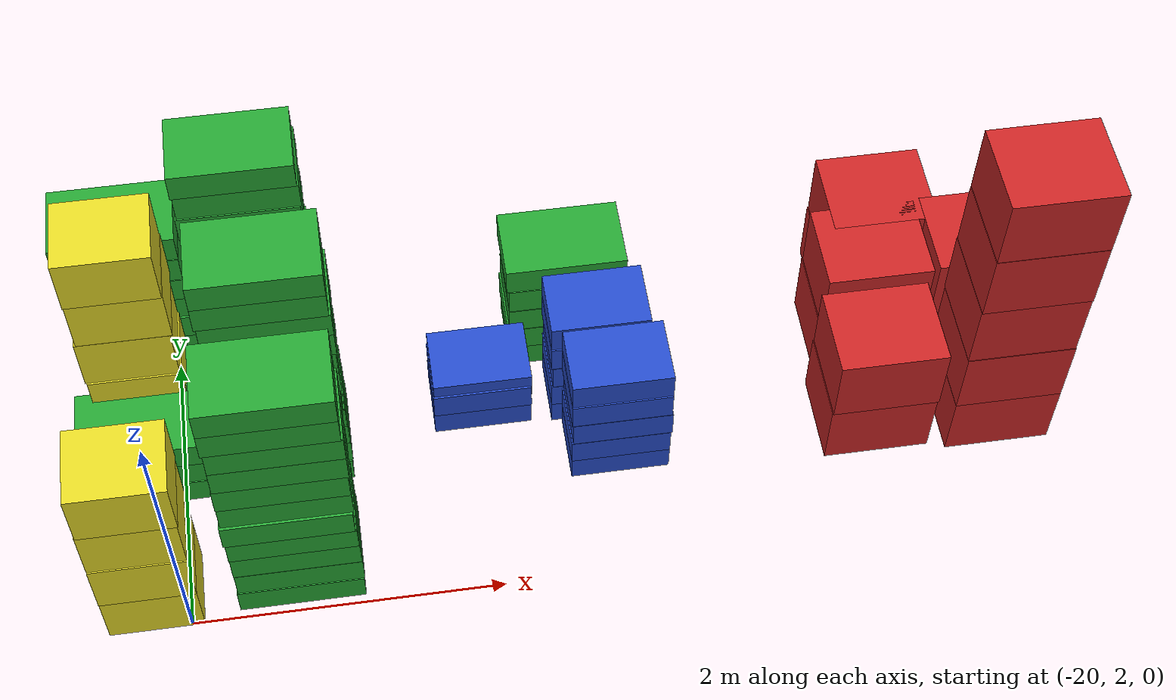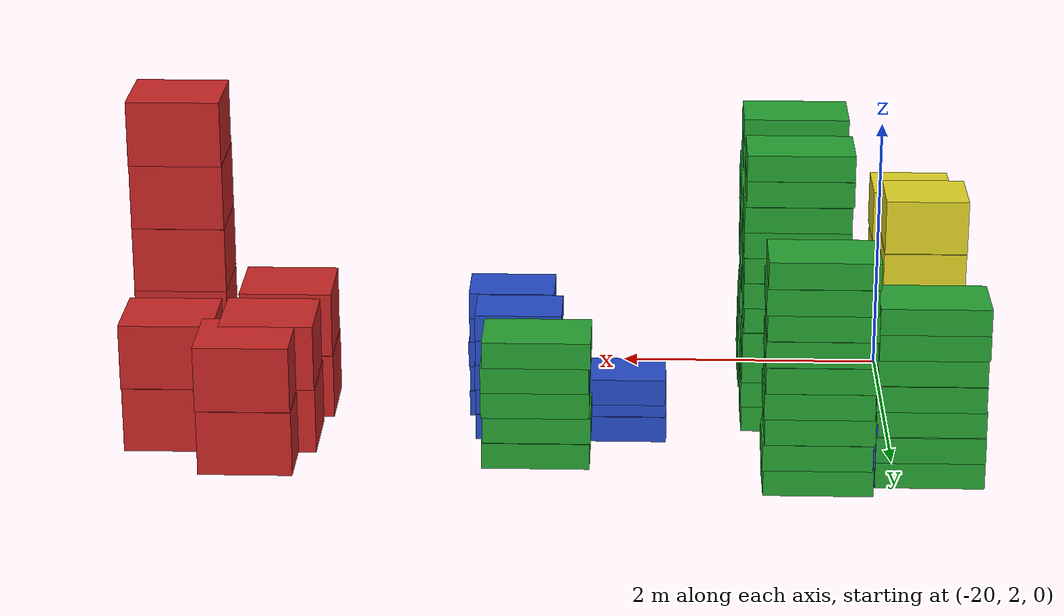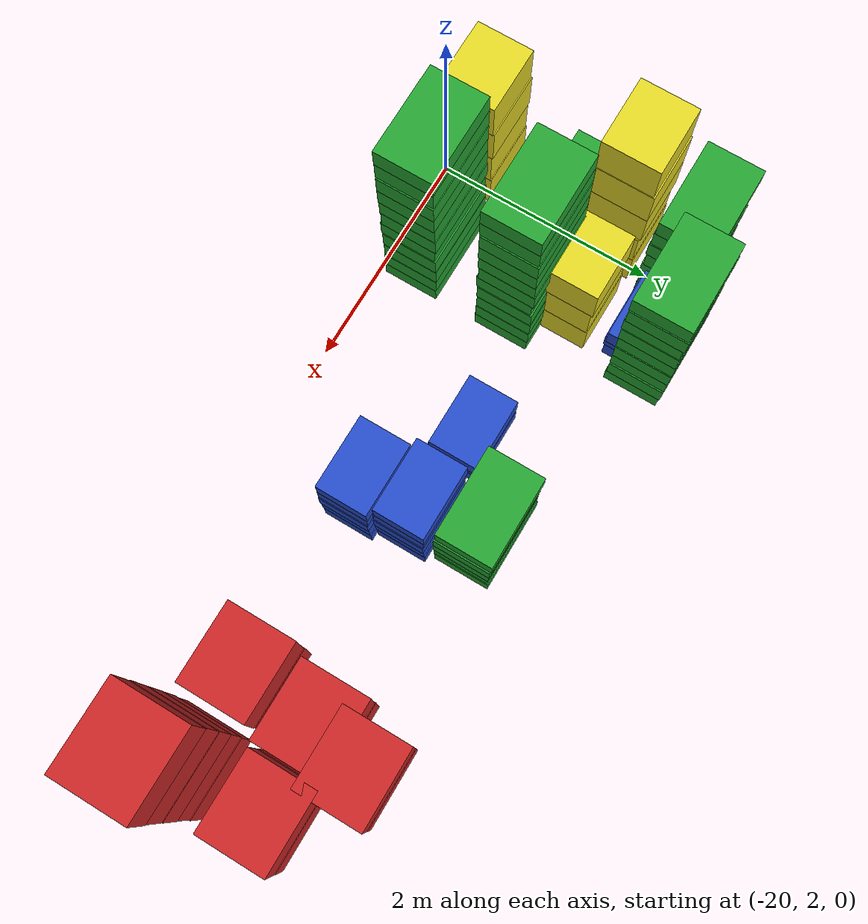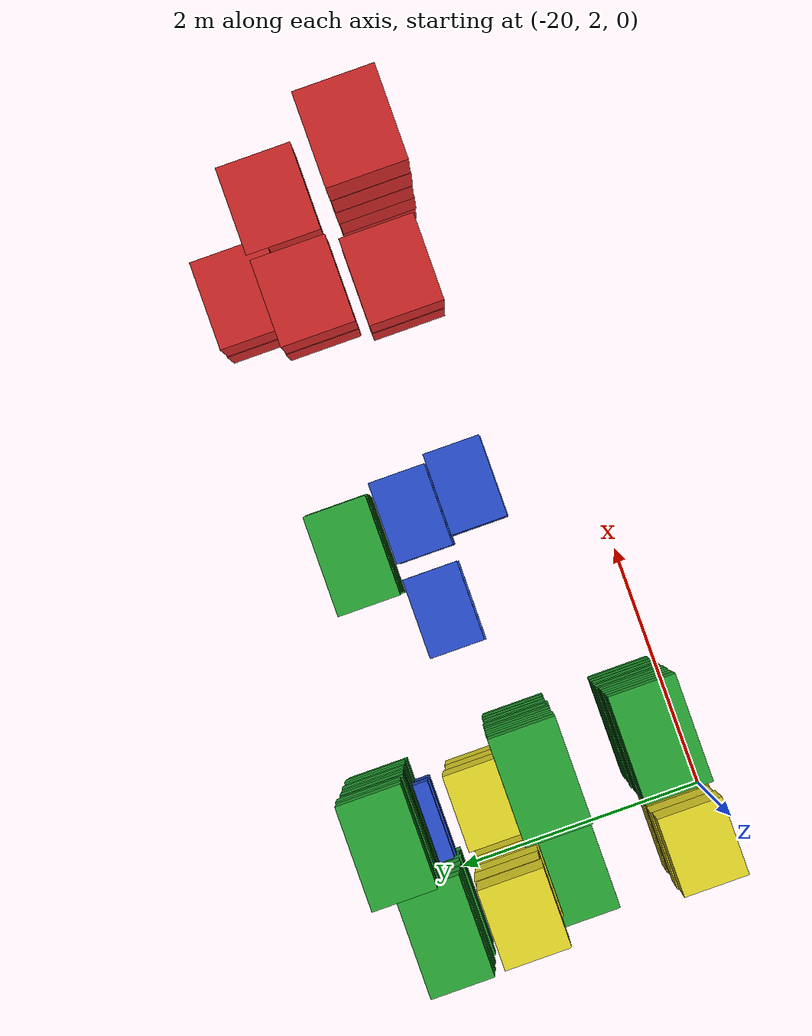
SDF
<sdf version="1.6">
 <world name="default">
  <include><uri>model://sun</uri></include>
  <model name="baggage_C_x4_0">
   <model name="baggage_C_0">
    <static>1</static>
    <link name="link">
     <collision name="collision"><geometry><box><size>0.6 0.5 0.4</size></box></geometry></collision>
     <visual name="visual">
      <geometry><box><size>0.6 0.5 0.4</size></box></geometry>
      <material>
       <script><uri>file://media/materials/scripts/gazebo.material</uri><name>Gazebo/Yellow</name></script>
      </material>
     </visual>
    </link>
    <pose>0 0 0.2 0 -0 0</pose>
   </model>
   <model name="baggage_C_1">
    <static>1</static>
    <link name="link">
     <collision name="collision"><geometry><box><size>0.6 0.5 0.4</size></box></geometry></collision>
     <visual name="visual">
      <geometry><box><size>0.6 0.5 0.4</size></box></geometry>
      <material>
       <script><uri>file://media/materials/scripts/gazebo.material</uri><name>Gazebo/Yellow</name></script>
      </material>
     </visual>
    </link>
    <pose>0.0008 -0.0083 0.6 0 -0 0</pose>
   </model>
   <model name="baggage_C_2">
    <static>1</static>
    <link name="link">
     <collision name="collision"><geometry><box><size>0.6 0.5 0.4</size></box></geometry></collision>
     <visual name="visual">
      <geometry><box><size>0.6 0.5 0.4</size></box></geometry>
      <material>
       <script><uri>file://media/materials/scripts/gazebo.material</uri><name>Gazebo/Yellow</name></script>
      </material>
     </visual>
    </link>
    <pose>0.0001 0.0014 1 0 -0 0</pose>
   </model>
   <model name="baggage_C_3">
    <static>1</static>
    <link name="link">
     <collision name="collision"><geometry><box><size>0.6 0.5 0.4</size></box></geometry></collision>
     <visual name="visual">
      <geometry><box><size>0.6 0.5 0.4</size></box></geometry>
      <material>
       <script><uri>file://media/materials/scripts/gazebo.material</uri><name>Gazebo/Yellow</name></script>
      </material>
     </visual>
    </link>
    <pose>0.007 -0.0089 1.4 0 -0 0</pose>
   </model>
   <pose>-20.2232 2.23903 0 0 -0 0</pose>
  </model>
  <model name="baggage_D_x11">
   <model name="baggage_D_0">
    <static>1</static>
    <link name="link">
     <collision name="collision"><geometry><box><size>0.8 0.5 0.2</size></box></geometry></collision>
     <visual name="visual">
      <geometry><box><size>0.8 0.5 0.2</size></box></geometry>
      <material>
       <script><uri>file://media/materials/scripts/gazebo.material</uri><name>Gazebo/Green</name></script>
      </material>
     </visual>
    </link>
    <pose>0 0 0.1 0 -0 0</pose>
   </model>
   <model name="baggage_D_1">
    <static>1</static>
    <link name="link">
     <collision name="collision"><geometry><box><size>0.8 0.5 0.2</size></box></geometry></collision>
     <visual name="visual">
      <geometry><box><size>0.8 0.5 0.2</size></box></geometry>
      <material>
       <script><uri>file://media/materials/scripts/gazebo.material</uri><name>Gazebo/Green</name></script>
      </material>
     </visual>
    </link>
    <pose>0.0069 0.0078 0.3 0 -0 0</pose>
   </model>
   <model name="baggage_D_2">
    <static>1</static>
    <link name="link">
     <collision name="collision"><geometry><box><size>0.8 0.5 0.2</size></box></geometry></collision>
     <visual name="visual">
      <geometry><box><size>0.8 0.5 0.2</size></box></geometry>
      <material>
       <script><uri>file://media/materials/scripts/gazebo.material</uri><name>Gazebo/Green</name></script>
      </material>
     </visual>
    </link>
    <pose>0.0035 0.01 0.5 0 -0 0</pose>
   </model>
   <model name="baggage_D_3">
    <static>1</static>
    <link name="link">
     <collision name="collision"><geometry><box><size>0.8 0.5 0.2</size></box></geometry></collision>
     <visual name="visual">
      <geometry><box><size>0.8 0.5 0.2</size></box></geometry>
      <material>
       <script><uri>file://media/materials/scripts/gazebo.material</uri><name>Gazebo/Green</name></script>
      </material>
     </visual>
    </link>
    <pose>0.0009 0.0056 0.7 0 -0 0</pose>
   </model>
   <model name="baggage_D_4">
    <static>1</static>
    <link name="link">
     <collision name="collision"><geometry><box><size>0.8 0.5 0.2</size></box></geometry></collision>
     <visual name="visual">
      <geometry><box><size>0.8 0.5 0.2</size></box></geometry>
      <material>
       <script><uri>file://media/materials/scripts/gazebo.material</uri><name>Gazebo/Green</name></script>
      </material>
     </visual>
    </link>
    <pose>-0.0074 -0.0079 0.9 0 -0 0</pose>
   </model>
   <model name="baggage_D_5">
    <static>1</static>
    <link name="link">
     <collision name="collision"><geometry><box><size>0.8 0.5 0.2</size></box></geometry></collision>
     <visual name="visual">
      <geometry><box><size>0.8 0.5 0.2</size></box></geometry>
      <material>
       <script><uri>file://media/materials/scripts/gazebo.material</uri><name>Gazebo/Green</name></script>
      </material>
     </visual>
    </link>
    <pose>0.0011 0.0099 1.1 0 -0 0</pose>
   </model>
   <model name="baggage_D_6">
    <static>1</static>
    <link name="link">
     <collision name="collision"><geometry><box><size>0.8 0.5 0.2</size></box></geometry></collision>
     <visual name="visual">
      <geometry><box><size>0.8 0.5 0.2</size></box></geometry>
      <material>
       <script><uri>file://media/materials/scripts/gazebo.material</uri><name>Gazebo/Green</name></script>
      </material>
     </visual>
    </link>
    <pose>-0.0009 0.0022 1.3 0 -0 0</pose>
   </model>
   <model name="baggage_D_7">
    <static>1</static>
    <link name="link">
     <collision name="collision"><geometry><box><size>0.8 0.5 0.2</size></box></geometry></collision>
     <visual name="visual">
      <geometry><box><size>0.8 0.5 0.2</size></box></geometry>
      <material>
       <script><uri>file://media/materials/scripts/gazebo.material</uri><name>Gazebo/Green</name></script>
      </material>
     </visual>
    </link>
    <pose>0.0046 0.0014 1.5 0 -0 0</pose>
   </model>
   <model name="baggage_D_8">
    <static>1</static>
    <link name="link">
     <collision name="collision"><geometry><box><size>0.8 0.5 0.2</size></box></geometry></collision>
     <visual name="visual">
      <geometry><box><size>0.8 0.5 0.2</size></box></geometry>
      <material>
       <script><uri>file://media/materials/scripts/gazebo.material</uri><name>Gazebo/Green</name></script>
      </material>
     </visual>
    </link>
    <pose>0.0052 0.0021 1.7 0 -0 0</pose>
   </model>
   <model name="baggage_D_9">
    <static>1</static>
    <link name="link">
     <collision name="collision"><geometry><box><size>0.8 0.5 0.2</size></box></geometry></collision>
     <visual name="visual">
      <geometry><box><size>0.8 0.5 0.2</size></box></geometry>
      <material>
       <script><uri>file://media/materials/scripts/gazebo.material</uri><name>Gazebo/Green</name></script>
      </material>
     </visual>
    </link>
    <pose>-0.0068 -0.0054 1.9 0 -0 0</pose>
   </model>
   <model name="baggage_D_10">
    <static>1</static>
    <link name="link">
     <collision name="collision"><geometry><box><size>0.8 0.5 0.2</size></box></geometry></collision>
     <visual name="visual">
      <geometry><box><size>0.8 0.5 0.2</size></box></geometry>
      <material>
       <script><uri>file://media/materials/scripts/gazebo.material</uri><name>Gazebo/Green</name></script>
      </material>
     </visual>
    </link>
    <pose>-0.0064 -0.0067 2.1 0 -0 0</pose>
   </model>
   <pose>-19.2962 2.30348 0 0 -0 0</pose>
  </model>
  <model name="baggage_D_x3_2">
   <model name="baggage_D_0">
    <static>1</static>
    <link name="link">
     <collision name="collision"><geometry><box><size>0.8 0.5 0.2</size></box></geometry></collision>
     <visual name="visual">
      <geometry><box><size>0.8 0.5 0.2</size></box></geometry>
      <material>
       <script><uri>file://media/materials/scripts/gazebo.material</uri><name>Gazebo/Green</name></script>
      </material>
     </visual>
    </link>
    <pose>0 0 0.1 0 -0 0</pose>
   </model>
   <model name="baggage_D_1">
    <static>1</static>
    <link name="link">
     <collision name="collision"><geometry><box><size>0.8 0.5 0.2</size></box></geometry></collision>
     <visual name="visual">
      <geometry><box><size>0.8 0.5 0.2</size></box></geometry>
      <material>
       <script><uri>file://media/materials/scripts/gazebo.material</uri><name>Gazebo/Green</name></script>
      </material>
     </visual>
    </link>
    <pose>-0.0056 0.0083 0.3 0 -0 0</pose>
   </model>
   <model name="baggage_D_2">
    <static>1</static>
    <link name="link">
     <collision name="collision"><geometry><box><size>0.8 0.5 0.2</size></box></geometry></collision>
     <visual name="visual">
      <geometry><box><size>0.8 0.5 0.2</size></box></geometry>
      <material>
       <script><uri>file://media/materials/scripts/gazebo.material</uri><name>Gazebo/Green</name></script>
      </material>
     </visual>
    </link>
    <pose>0.0053 0.0057 0.5 0 -0 0</pose>
   </model>
   <pose>-20.2273 3.1731 0 0 -0 0</pose>
  </model>
  <model name="baggage_D_x11_0">
   <model name="baggage_D_0">
    <static>1</static>
    <link name="link">
     <collision name="collision"><geometry><box><size>0.8 0.5 0.2</size></box></geometry></collision>
     <visual name="visual">
      <geometry><box><size>0.8 0.5 0.2</size></box></geometry>
      <material>
       <script><uri>file://media/materials/scripts/gazebo.material</uri><name>Gazebo/Green</name></script>
      </material>
     </visual>
    </link>
    <pose>0 0 0.1 0 -0 0</pose>
   </model>
   <model name="baggage_D_1">
    <static>1</static>
    <link name="link">
     <collision name="collision"><geometry><box><size>0.8 0.5 0.2</size></box></geometry></collision>
     <visual name="visual">
      <geometry><box><size>0.8 0.5 0.2</size></box></geometry>
      <material>
       <script><uri>file://media/materials/scripts/gazebo.material</uri><name>Gazebo/Green</name></script>
      </material>
     </visual>
    </link>
    <pose>0.0069 0.0078 0.3 0 -0 0</pose>
   </model>
   <model name="baggage_D_2">
    <static>1</static>
    <link name="link">
     <collision name="collision"><geometry><box><size>0.8 0.5 0.2</size></box></geometry></collision>
     <visual name="visual">
      <geometry><box><size>0.8 0.5 0.2</size></box></geometry>
      <material>
       <script><uri>file://media/materials/scripts/gazebo.material</uri><name>Gazebo/Green</name></script>
      </material>
     </visual>
    </link>
    <pose>0.0035 0.01 0.5 0 -0 0</pose>
   </model>
   <model name="baggage_D_3">
    <static>1</static>
    <link name="link">
     <collision name="collision"><geometry><box><size>0.8 0.5 0.2</size></box></geometry></collision>
     <visual name="visual">
      <geometry><box><size>0.8 0.5 0.2</size></box></geometry>
      <material>
       <script><uri>file://media/materials/scripts/gazebo.material</uri><name>Gazebo/Green</name></script>
      </material>
     </visual>
    </link>
    <pose>0.0009 0.0056 0.7 0 -0 0</pose>
   </model>
   <model name="baggage_D_4">
    <static>1</static>
    <link name="link">
     <collision name="collision"><geometry><box><size>0.8 0.5 0.2</size></box></geometry></collision>
     <visual name="visual">
      <geometry><box><size>0.8 0.5 0.2</size></box></geometry>
      <material>
       <script><uri>file://media/materials/scripts/gazebo.material</uri><name>Gazebo/Green</name></script>
      </material>
     </visual>
    </link>
    <pose>-0.0074 -0.0079 0.9 0 -0 0</pose>
   </model>
   <model name="baggage_D_5">
    <static>1</static>
    <link name="link">
     <collision name="collision"><geometry><box><size>0.8 0.5 0.2</size></box></geometry></collision>
     <visual name="visual">
      <geometry><box><size>0.8 0.5 0.2</size></box></geometry>
      <material>
       <script><uri>file://media/materials/scripts/gazebo.material</uri><name>Gazebo/Green</name></script>
      </material>
     </visual>
    </link>
    <pose>0.0011 0.0099 1.1 0 -0 0</pose>
   </model>
   <model name="baggage_D_6">
    <static>1</static>
    <link name="link">
     <collision name="collision"><geometry><box><size>0.8 0.5 0.2</size></box></geometry></collision>
     <visual name="visual">
      <geometry><box><size>0.8 0.5 0.2</size></box></geometry>
      <material>
       <script><uri>file://media/materials/scripts/gazebo.material</uri><name>Gazebo/Green</name></script>
      </material>
     </visual>
    </link>
    <pose>-0.0009 0.0022 1.3 0 -0 0</pose>
   </model>
   <model name="baggage_D_7">
    <static>1</static>
    <link name="link">
     <collision name="collision"><geometry><box><size>0.8 0.5 0.2</size></box></geometry></collision>
     <visual name="visual">
      <geometry><box><size>0.8 0.5 0.2</size></box></geometry>
      <material>
       <script><uri>file://media/materials/scripts/gazebo.material</uri><name>Gazebo/Green</name></script>
      </material>
     </visual>
    </link>
    <pose>0.0046 0.0014 1.5 0 -0 0</pose>
   </model>
   <model name="baggage_D_8">
    <static>1</static>
    <link name="link">
     <collision name="collision"><geometry><box><size>0.8 0.5 0.2</size></box></geometry></collision>
     <visual name="visual">
      <geometry><box><size>0.8 0.5 0.2</size></box></geometry>
      <material>
       <script><uri>file://media/materials/scripts/gazebo.material</uri><name>Gazebo/Green</name></script>
      </material>
     </visual>
    </link>
    <pose>0.0052 0.0021 1.7 0 -0 0</pose>
   </model>
   <model name="baggage_D_9">
    <static>1</static>
    <link name="link">
     <collision name="collision"><geometry><box><size>0.8 0.5 0.2</size></box></geometry></collision>
     <visual name="visual">
      <geometry><box><size>0.8 0.5 0.2</size></box></geometry>
      <material>
       <script><uri>file://media/materials/scripts/gazebo.material</uri><name>Gazebo/Green</name></script>
      </material>
     </visual>
    </link>
    <pose>-0.0068 -0.0054 1.9 0 -0 0</pose>
   </model>
   <model name="baggage_D_10">
    <static>1</static>
    <link name="link">
     <collision name="collision"><geometry><box><size>0.8 0.5 0.2</size></box></geometry></collision>
     <visual name="visual">
      <geometry><box><size>0.8 0.5 0.2</size></box></geometry>
      <material>
       <script><uri>file://media/materials/scripts/gazebo.material</uri><name>Gazebo/Green</name></script>
      </material>
     </visual>
    </link>
    <pose>-0.0064 -0.0067 2.1 0 -0 0</pose>
   </model>
   <pose>-19.2952 3.1927 0 0 -0 0</pose>
  </model>
  <model name="baggage_C_x5">
   <model name="baggage_C_0">
    <static>1</static>
    <link name="link">
     <collision name="collision"><geometry><box><size>0.6 0.5 0.4</size></box></geometry></collision>
     <visual name="visual">
      <geometry><box><size>0.6 0.5 0.4</size></box></geometry>
      <material>
       <script><uri>file://media/materials/scripts/gazebo.material</uri><name>Gazebo/Yellow</name></script>
      </material>
     </visual>
    </link>
    <pose>0 0 0.2 0 -0 0</pose>
   </model>
   <model name="baggage_C_1">
    <static>1</static>
    <link name="link">
     <collision name="collision"><geometry><box><size>0.6 0.5 0.4</size></box></geometry></collision>
     <visual name="visual">
      <geometry><box><size>0.6 0.5 0.4</size></box></geometry>
      <material>
       <script><uri>file://media/materials/scripts/gazebo.material</uri><name>Gazebo/Yellow</name></script>
      </material>
     </visual>
    </link>
    <pose>0.0004 -0.0065 0.6 0 -0 0</pose>
   </model>
   <model name="baggage_C_2">
    <static>1</static>
    <link name="link">
     <collision name="collision"><geometry><box><size>0.6 0.5 0.4</size></box></geometry></collision>
     <visual name="visual">
      <geometry><box><size>0.6 0.5 0.4</size></box></geometry>
      <material>
       <script><uri>file://media/materials/scripts/gazebo.material</uri><name>Gazebo/Yellow</name></script>
      </material>
     </visual>
    </link>
    <pose>-0.0097 0.0061 1 0 -0 0</pose>
   </model>
   <model name="baggage_C_3">
    <static>1</static>
    <link name="link">
     <collision name="collision"><geometry><box><size>0.6 0.5 0.4</size></box></geometry></collision>
     <visual name="visual">
      <geometry><box><size>0.6 0.5 0.4</size></box></geometry>
      <material>
       <script><uri>file://media/materials/scripts/gazebo.material</uri><name>Gazebo/Yellow</name></script>
      </material>
     </visual>
    </link>
    <pose>0.0039 0.0077 1.4 0 -0 0</pose>
   </model>
   <model name="baggage_C_4">
    <static>1</static>
    <link name="link">
     <collision name="collision"><geometry><box><size>0.6 0.5 0.4</size></box></geometry></collision>
     <visual name="visual">
      <geometry><box><size>0.6 0.5 0.4</size></box></geometry>
      <material>
       <script><uri>file://media/materials/scripts/gazebo.material</uri><name>Gazebo/Yellow</name></script>
      </material>
     </visual>
    </link>
    <pose>-0.0001 -0.0044 1.8 0 -0 0</pose>
   </model>
   <pose>-20.2035 3.62128 0 0 -0 0</pose>
  </model>
  <model name="baggage_C_x3_3">
   <model name="baggage_C_0">
    <static>1</static>
    <link name="link">
     <collision name="collision"><geometry><box><size>0.6 0.5 0.4</size></box></geometry></collision>
     <visual name="visual">
      <geometry><box><size>0.6 0.5 0.4</size></box></geometry>
      <material>
       <script><uri>file://media/materials/scripts/gazebo.material</uri><name>Gazebo/Yellow</name></script>
      </material>
     </visual>
    </link>
    <pose>0 0 0.2 0 -0 0</pose>
   </model>
   <model name="baggage_C_1">
    <static>1</static>
    <link name="link">
     <collision name="collision"><geometry><box><size>0.6 0.5 0.4</size></box></geometry></collision>
     <visual name="visual">
      <geometry><box><size>0.6 0.5 0.4</size></box></geometry>
      <material>
       <script><uri>file://media/materials/scripts/gazebo.material</uri><name>Gazebo/Yellow</name></script>
      </material>
     </visual>
    </link>
    <pose>0.0062 -0.0069 0.6 0 -0 0</pose>
   </model>
   <model name="baggage_C_2">
    <static>1</static>
    <link name="link">
     <collision name="collision"><geometry><box><size>0.6 0.5 0.4</size></box></geometry></collision>
     <visual name="visual">
      <geometry><box><size>0.6 0.5 0.4</size></box></geometry>
      <material>
       <script><uri>file://media/materials/scripts/gazebo.material</uri><name>Gazebo/Yellow</name></script>
      </material>
     </visual>
    </link>
    <pose>0.0089 0.0083 1 0 -0 0</pose>
   </model>
   <pose>-19.4527 3.60719 0 0 -0 0</pose>
  </model>
  <model name="baggage_B_x5_6">
   <model name="baggage_B_0">
    <static>1</static>
    <link name="link">
     <collision name="collision"><geometry><box><size>0.65 0.45 0.2</size></box></geometry></collision>
     <visual name="visual">
      <geometry><box><size>0.65 0.45 0.2</size></box></geometry>
      <material>
       <script><uri>file://media/materials/scripts/gazebo.material</uri><name>Gazebo/Blue</name></script>
      </material>
     </visual>
    </link>
    <pose>0 0 0.1 0 -0 0</pose>
   </model>
   <model name="baggage_B_1">
    <static>1</static>
    <link name="link">
     <collision name="collision"><geometry><box><size>0.65 0.45 0.2</size></box></geometry></collision>
     <visual name="visual">
      <geometry><box><size>0.65 0.45 0.2</size></box></geometry>
      <material>
       <script><uri>file://media/materials/scripts/gazebo.material</uri><name>Gazebo/Blue</name></script>
      </material>
     </visual>
    </link>
    <pose>-0.0014 -0.0091 0.3 0 -0 0</pose>
   </model>
   <model name="baggage_B_2">
    <static>1</static>
    <link name="link">
     <collision name="collision"><geometry><box><size>0.65 0.45 0.2</size></box></geometry></collision>
     <visual name="visual">
      <geometry><box><size>0.65 0.45 0.2</size></box></geometry>
      <material>
       <script><uri>file://media/materials/scripts/gazebo.material</uri><name>Gazebo/Blue</name></script>
      </material>
     </visual>
    </link>
    <pose>0.0076 -0.0066 0.5 0 -0 0</pose>
   </model>
   <model name="baggage_B_3">
    <static>1</static>
    <link name="link">
     <collision name="collision"><geometry><box><size>0.65 0.45 0.2</size></box></geometry></collision>
     <visual name="visual">
      <geometry><box><size>0.65 0.45 0.2</size></box></geometry>
      <material>
       <script><uri>file://media/materials/scripts/gazebo.material</uri><name>Gazebo/Blue</name></script>
      </material>
     </visual>
    </link>
    <pose>0 -0.0032 0.7 0 -0 0</pose>
   </model>
   <model name="baggage_B_4">
    <static>1</static>
    <link name="link">
     <collision name="collision"><geometry><box><size>0.65 0.45 0.2</size></box></geometry></collision>
     <visual name="visual">
      <geometry><box><size>0.65 0.45 0.2</size></box></geometry>
      <material>
       <script><uri>file://media/materials/scripts/gazebo.material</uri><name>Gazebo/Blue</name></script>
      </material>
     </visual>
    </link>
    <pose>0.0023 0.0073 0.9 0 -0 0</pose>
   </model>
   <pose>-20.2671 4.22693 0 0 -0 0</pose>
  </model>
  <model name="baggage_B_x3_3">
   <model name="baggage_B_0">
    <static>1</static>
    <link name="link">
     <collision name="collision"><geometry><box><size>0.65 0.45 0.2</size></box></geometry></collision>
     <visual name="visual">
      <geometry><box><size>0.65 0.45 0.2</size></box></geometry>
      <material>
       <script><uri>file://media/materials/scripts/gazebo.material</uri><name>Gazebo/Blue</name></script>
      </material>
     </visual>
    </link>
    <pose>0 0 0.1 0 -0 0</pose>
   </model>
   <model name="baggage_B_1">
    <static>1</static>
    <link name="link">
     <collision name="collision"><geometry><box><size>0.65 0.45 0.2</size></box></geometry></collision>
     <visual name="visual">
      <geometry><box><size>0.65 0.45 0.2</size></box></geometry>
      <material>
       <script><uri>file://media/materials/scripts/gazebo.material</uri><name>Gazebo/Blue</name></script>
      </material>
     </visual>
    </link>
    <pose>0.0028 -0.0086 0.3 0 -0 0</pose>
   </model>
   <model name="baggage_B_2">
    <static>1</static>
    <link name="link">
     <collision name="collision"><geometry><box><size>0.65 0.45 0.2</size></box></geometry></collision>
     <visual name="visual">
      <geometry><box><size>0.65 0.45 0.2</size></box></geometry>
      <material>
       <script><uri>file://media/materials/scripts/gazebo.material</uri><name>Gazebo/Blue</name></script>
      </material>
     </visual>
    </link>
    <pose>0.0092 0.006 0.4 0 -0 0</pose>
   </model>
   <pose>-19.537 4.23713 0 0 -0 0</pose>
  </model>
  <model name="baggage_A_x5_0">
   <model name="baggage_A_0">
    <static>1</static>
    <link name="link">
     <collision name="collision"><geometry><box><size>0.7 0.6 0.5</size></box></geometry></collision>
     <visual name="visual">
      <geometry><box><size>0.7 0.6 0.5</size></box></geometry>
      <material>
       <script><uri>file://media/materials/scripts/gazebo.material</uri><name>Gazebo/Red</name></script>
      </material>
     </visual>
    </link>
    <pose>0 0 0.25 0 -0 0</pose>
   </model>
   <model name="baggage_A_1">
    <static>1</static>
    <link name="link">
     <collision name="collision"><geometry><box><size>0.7 0.6 0.5</size></box></geometry></collision>
     <visual name="visual">
      <geometry><box><size>0.7 0.6 0.5</size></box></geometry>
      <material>
       <script><uri>file://media/materials/scripts/gazebo.material</uri><name>Gazebo/Red</name></script>
      </material>
     </visual>
    </link>
    <pose>-0.0046 -0.0065 0.75 0 -0 0</pose>
   </model>
   <model name="baggage_A_2">
    <static>1</static>
    <link name="link">
     <collision name="collision"><geometry><box><size>0.7 0.6 0.5</size></box></geometry></collision>
     <visual name="visual">
      <geometry><box><size>0.7 0.6 0.5</size></box></geometry>
      <material>
       <script><uri>file://media/materials/scripts/gazebo.material</uri><name>Gazebo/Red</name></script>
      </material>
     </visual>
    </link>
    <pose>-0.0064 -0.0011 1.25 0 -0 0</pose>
   </model>
   <model name="baggage_A_3">
    <static>1</static>
    <link name="link">
     <collision name="collision"><geometry><box><size>0.7 0.6 0.5</size></box></geometry></collision>
     <visual name="visual">
      <geometry><box><size>0.7 0.6 0.5</size></box></geometry>
      <material>
       <script><uri>file://media/materials/scripts/gazebo.material</uri><name>Gazebo/Red</name></script>
      </material>
     </visual>
    </link>
    <pose>-0.0044 -0.0061 1.75 0 -0 0</pose>
   </model>
   <model name="baggage_A_4">
    <static>1</static>
    <link name="link">
     <collision name="collision"><geometry><box><size>0.7 0.6 0.5</size></box></geometry></collision>
     <visual name="visual">
      <geometry><box><size>0.7 0.6 0.5</size></box></geometry>
      <material>
       <script><uri>file://media/materials/scripts/gazebo.material</uri><name>Gazebo/Red</name></script>
      </material>
     </visual>
    </link>
    <pose>-0.0013 -0.0026 2.25 0 -0 0</pose>
   </model>
   <pose>-14.6127 2.91654 0 0 -0 0</pose>
  </model>
  <model name="baggage_A_x2_2">
   <model name="baggage_A_0">
    <static>1</static>
    <link name="link">
     <collision name="collision"><geometry><box><size>0.7 0.6 0.5</size></box></geometry></collision>
     <visual name="visual">
      <geometry><box><size>0.7 0.6 0.5</size></box></geometry>
      <material>
       <script><uri>file://media/materials/scripts/gazebo.material</uri><name>Gazebo/Red</name></script>
      </material>
     </visual>
    </link>
    <pose>0 0 0.25 0 -0 0</pose>
   </model>
   <model name="baggage_A_1">
    <static>1</static>
    <link name="link">
     <collision name="collision"><geometry><box><size>0.7 0.6 0.5</size></box></geometry></collision>
     <visual name="visual">
      <geometry><box><size>0.7 0.6 0.5</size></box></geometry>
      <material>
       <script><uri>file://media/materials/scripts/gazebo.material</uri><name>Gazebo/Red</name></script>
      </material>
     </visual>
    </link>
    <pose>0.0063 -0.0062 0.75 0 -0 0</pose>
   </model>
   <pose>-15.4256 2.96278 0 0 -0 0</pose>
  </model>
  <model name="baggage_A_x2_3">
   <model name="baggage_A_0">
    <static>1</static>
    <link name="link">
     <collision name="collision"><geometry><box><size>0.7 0.6 0.5</size></box></geometry></collision>
     <visual name="visual">
      <geometry><box><size>0.7 0.6 0.5</size></box></geometry>
      <material>
       <script><uri>file://media/materials/scripts/gazebo.material</uri><name>Gazebo/Red</name></script>
      </material>
     </visual>
    </link>
    <pose>0 0 0.25 0 -0 0</pose>
   </model>
   <model name="baggage_A_1">
    <static>1</static>
    <link name="link">
     <collision name="collision"><geometry><box><size>0.7 0.6 0.5</size></box></geometry></collision>
     <visual name="visual">
      <geometry><box><size>0.7 0.6 0.5</size></box></geometry>
      <material>
       <script><uri>file://media/materials/scripts/gazebo.material</uri><name>Gazebo/Red</name></script>
      </material>
     </visual>
    </link>
    <pose>0.0063 -0.0062 0.75 0 -0 0</pose>
   </model>
   <pose>-14.6118 3.66384 0 0 -0 0</pose>
  </model>
  <model name="baggage_A_x2_4">
   <model name="baggage_A_0">
    <static>1</static>
    <link name="link">
     <collision name="collision"><geometry><box><size>0.7 0.6 0.5</size></box></geometry></collision>
     <visual name="visual">
      <geometry><box><size>0.7 0.6 0.5</size></box></geometry>
      <material>
       <script><uri>file://media/materials/scripts/gazebo.material</uri><name>Gazebo/Red</name></script>
      </material>
     </visual>
    </link>
    <pose>0 0 0.25 0 -0 0</pose>
   </model>
   <model name="baggage_A_1">
    <static>1</static>
    <link name="link">
     <collision name="collision"><geometry><box><size>0.7 0.6 0.5</size></box></geometry></collision>
     <visual name="visual">
      <geometry><box><size>0.7 0.6 0.5</size></box></geometry>
      <material>
       <script><uri>file://media/materials/scripts/gazebo.material</uri><name>Gazebo/Red</name></script>
      </material>
     </visual>
    </link>
    <pose>0.0063 -0.0062 0.75 0 -0 0</pose>
   </model>
   <pose>-15.3543 3.64845 0 0 -0 0</pose>
  </model>
  <model name="baggage_D_x7_0">
   <model name="baggage_D_0">
    <static>1</static>
    <link name="link">
     <collision name="collision"><geometry><box><size>0.8 0.5 0.2</size></box></geometry></collision>
     <visual name="visual">
      <geometry><box><size>0.8 0.5 0.2</size></box></geometry>
      <material>
       <script><uri>file://media/materials/scripts/gazebo.material</uri><name>Gazebo/Green</name></script>
      </material>
     </visual>
    </link>
    <pose>0 0 0.1 0 -0 0</pose>
   </model>
   <model name="baggage_D_1">
    <static>1</static>
    <link name="link">
     <collision name="collision"><geometry><box><size>0.8 0.5 0.2</size></box></geometry></collision>
     <visual name="visual">
      <geometry><box><size>0.8 0.5 0.2</size></box></geometry>
      <material>
       <script><uri>file://media/materials/scripts/gazebo.material</uri><name>Gazebo/Green</name></script>
      </material>
     </visual>
    </link>
    <pose>0.0009 0.0063 0.3 0 -0 0</pose>
   </model>
   <model name="baggage_D_2">
    <static>1</static>
    <link name="link">
     <collision name="collision"><geometry><box><size>0.8 0.5 0.2</size></box></geometry></collision>
     <visual name="visual">
      <geometry><box><size>0.8 0.5 0.2</size></box></geometry>
      <material>
       <script><uri>file://media/materials/scripts/gazebo.material</uri><name>Gazebo/Green</name></script>
      </material>
     </visual>
    </link>
    <pose>0.0011 -0.0098 0.5 0 -0 0</pose>
   </model>
   <model name="baggage_D_3">
    <static>1</static>
    <link name="link">
     <collision name="collision"><geometry><box><size>0.8 0.5 0.2</size></box></geometry></collision>
     <visual name="visual">
      <geometry><box><size>0.8 0.5 0.2</size></box></geometry>
      <material>
       <script><uri>file://media/materials/scripts/gazebo.material</uri><name>Gazebo/Green</name></script>
      </material>
     </visual>
    </link>
    <pose>0.0089 0.0055 0.7 0 -0 0</pose>
   </model>
   <model name="baggage_D_4">
    <static>1</static>
    <link name="link">
     <collision name="collision"><geometry><box><size>0.8 0.5 0.2</size></box></geometry></collision>
     <visual name="visual">
      <geometry><box><size>0.8 0.5 0.2</size></box></geometry>
      <material>
       <script><uri>file://media/materials/scripts/gazebo.material</uri><name>Gazebo/Green</name></script>
      </material>
     </visual>
    </link>
    <pose>0.009 -0.0056 0.9 0 -0 0</pose>
   </model>
   <model name="baggage_D_5">
    <static>1</static>
    <link name="link">
     <collision name="collision"><geometry><box><size>0.8 0.5 0.2</size></box></geometry></collision>
     <visual name="visual">
      <geometry><box><size>0.8 0.5 0.2</size></box></geometry>
      <material>
       <script><uri>file://media/materials/scripts/gazebo.material</uri><name>Gazebo/Green</name></script>
      </material>
     </visual>
    </link>
    <pose>0.0001 0.0013 1.1 0 -0 0</pose>
   </model>
   <model name="baggage_D_6">
    <static>1</static>
    <link name="link">
     <collision name="collision"><geometry><box><size>0.8 0.5 0.2</size></box></geometry></collision>
     <visual name="visual">
      <geometry><box><size>0.8 0.5 0.2</size></box></geometry>
      <material>
       <script><uri>file://media/materials/scripts/gazebo.material</uri><name>Gazebo/Green</name></script>
      </material>
     </visual>
    </link>
    <pose>0.0019 0.009 1.3 0 -0 0</pose>
   </model>
   <pose>-20.2436 4.22297 0 0 -0 0</pose>
  </model>
  <model name="baggage_D_x9_0">
   <model name="baggage_D_0">
    <static>1</static>
    <link name="link">
     <collision name="collision"><geometry><box><size>0.8 0.5 0.2</size></box></geometry></collision>
     <visual name="visual">
      <geometry><box><size>0.8 0.5 0.2</size></box></geometry>
      <material>
       <script><uri>file://media/materials/scripts/gazebo.material</uri><name>Gazebo/Green</name></script>
      </material>
     </visual>
    </link>
    <pose>0 0 0.1 0 -0 0</pose>
   </model>
   <model name="baggage_D_1">
    <static>1</static>
    <link name="link">
     <collision name="collision"><geometry><box><size>0.8 0.5 0.2</size></box></geometry></collision>
     <visual name="visual">
      <geometry><box><size>0.8 0.5 0.2</size></box></geometry>
      <material>
       <script><uri>file://media/materials/scripts/gazebo.material</uri><name>Gazebo/Green</name></script>
      </material>
     </visual>
    </link>
    <pose>0.0092 0.0098 0.3 0 -0 0</pose>
   </model>
   <model name="baggage_D_2">
    <static>1</static>
    <link name="link">
     <collision name="collision"><geometry><box><size>0.8 0.5 0.2</size></box></geometry></collision>
     <visual name="visual">
      <geometry><box><size>0.8 0.5 0.2</size></box></geometry>
      <material>
       <script><uri>file://media/materials/scripts/gazebo.material</uri><name>Gazebo/Green</name></script>
      </material>
     </visual>
    </link>
    <pose>-0.0038 0.0073 0.5 0 -0 0</pose>
   </model>
   <model name="baggage_D_3">
    <static>1</static>
    <link name="link">
     <collision name="collision"><geometry><box><size>0.8 0.5 0.2</size></box></geometry></collision>
     <visual name="visual">
      <geometry><box><size>0.8 0.5 0.2</size></box></geometry>
      <material>
       <script><uri>file://media/materials/scripts/gazebo.material</uri><name>Gazebo/Green</name></script>
      </material>
     </visual>
    </link>
    <pose>0.0044 0.0085 0.7 0 -0 0</pose>
   </model>
   <model name="baggage_D_4">
    <static>1</static>
    <link name="link">
     <collision name="collision"><geometry><box><size>0.8 0.5 0.2</size></box></geometry></collision>
     <visual name="visual">
      <geometry><box><size>0.8 0.5 0.2</size></box></geometry>
      <material>
       <script><uri>file://media/materials/scripts/gazebo.material</uri><name>Gazebo/Green</name></script>
      </material>
     </visual>
    </link>
    <pose>-0.0044 0.0075 0.9 0 -0 0</pose>
   </model>
   <model name="baggage_D_5">
    <static>1</static>
    <link name="link">
     <collision name="collision"><geometry><box><size>0.8 0.5 0.2</size></box></geometry></collision>
     <visual name="visual">
      <geometry><box><size>0.8 0.5 0.2</size></box></geometry>
      <material>
       <script><uri>file://media/materials/scripts/gazebo.material</uri><name>Gazebo/Green</name></script>
      </material>
     </visual>
    </link>
    <pose>0.0002 0.0017 1.1 0 -0 0</pose>
   </model>
   <model name="baggage_D_6">
    <static>1</static>
    <link name="link">
     <collision name="collision"><geometry><box><size>0.8 0.5 0.2</size></box></geometry></collision>
     <visual name="visual">
      <geometry><box><size>0.8 0.5 0.2</size></box></geometry>
      <material>
       <script><uri>file://media/materials/scripts/gazebo.material</uri><name>Gazebo/Green</name></script>
      </material>
     </visual>
    </link>
    <pose>-0.0057 -0.0032 1.3 0 -0 0</pose>
   </model>
   <model name="baggage_D_7">
    <static>1</static>
    <link name="link">
     <collision name="collision"><geometry><box><size>0.8 0.5 0.2</size></box></geometry></collision>
     <visual name="visual">
      <geometry><box><size>0.8 0.5 0.2</size></box></geometry>
      <material>
       <script><uri>file://media/materials/scripts/gazebo.material</uri><name>Gazebo/Green</name></script>
      </material>
     </visual>
    </link>
    <pose>0.0039 0.0078 1.5 0 -0 0</pose>
   </model>
   <model name="baggage_D_8">
    <static>1</static>
    <link name="link">
     <collision name="collision"><geometry><box><size>0.8 0.5 0.2</size></box></geometry></collision>
     <visual name="visual">
      <geometry><box><size>0.8 0.5 0.2</size></box></geometry>
      <material>
       <script><uri>file://media/materials/scripts/gazebo.material</uri><name>Gazebo/Green</name></script>
      </material>
     </visual>
    </link>
    <pose>-0.006 0.0028 1.7 0 -0 0</pose>
   </model>
   <pose>-19.4232 4.38361 0 0 -0 0</pose>
  </model>
  <model name="baggage_A_x2_11">
   <model name="baggage_A_0">
    <static>1</static>
    <link name="link">
     <collision name="collision"><geometry><box><size>0.7 0.6 0.5</size></box></geometry></collision>
     <visual name="visual">
      <geometry><box><size>0.7 0.6 0.5</size></box></geometry>
      <material>
       <script><uri>file://media/materials/scripts/gazebo.material</uri><name>Gazebo/Red</name></script>
      </material>
     </visual>
    </link>
    <pose>0 0 0.25 0 -0 0</pose>
   </model>
   <model name="baggage_A_1">
    <static>1</static>
    <link name="link">
     <collision name="collision"><geometry><box><size>0.7 0.6 0.5</size></box></geometry></collision>
     <visual name="visual">
      <geometry><box><size>0.7 0.6 0.5</size></box></geometry>
      <material>
       <script><uri>file://media/materials/scripts/gazebo.material</uri><name>Gazebo/Red</name></script>
      </material>
     </visual>
    </link>
    <pose>0.0063 -0.0062 0.75 0 -0 0</pose>
   </model>
   <pose>-15.221 4.08627 0 0 -0 0</pose>
  </model>
  <model name="baggage_D_x5_9">
   <model name="baggage_D_0">
    <static>1</static>
    <link name="link">
     <collision name="collision"><geometry><box><size>0.8 0.5 0.2</size></box></geometry></collision>
     <visual name="visual">
      <geometry><box><size>0.8 0.5 0.2</size></box></geometry>
      <material>
       <script><uri>file://media/materials/scripts/gazebo.material</uri><name>Gazebo/Green</name></script>
      </material>
     </visual>
    </link>
    <pose>0 0 0.1 0 -0 0</pose>
   </model>
   <model name="baggage_D_1">
    <static>1</static>
    <link name="link">
     <collision name="collision"><geometry><box><size>0.8 0.5 0.2</size></box></geometry></collision>
     <visual name="visual">
      <geometry><box><size>0.8 0.5 0.2</size></box></geometry>
      <material>
       <script><uri>file://media/materials/scripts/gazebo.material</uri><name>Gazebo/Green</name></script>
      </material>
     </visual>
    </link>
    <pose>-0.0065 -0.0092 0.3 0 -0 0</pose>
   </model>
   <model name="baggage_D_2">
    <static>1</static>
    <link name="link">
     <collision name="collision"><geometry><box><size>0.8 0.5 0.2</size></box></geometry></collision>
     <visual name="visual">
      <geometry><box><size>0.8 0.5 0.2</size></box></geometry>
      <material>
       <script><uri>file://media/materials/scripts/gazebo.material</uri><name>Gazebo/Green</name></script>
      </material>
     </visual>
    </link>
    <pose>0.005 -0.0052 0.5 0 -0 0</pose>
   </model>
   <model name="baggage_D_3">
    <static>1</static>
    <link name="link">
     <collision name="collision"><geometry><box><size>0.8 0.5 0.2</size></box></geometry></collision>
     <visual name="visual">
      <geometry><box><size>0.8 0.5 0.2</size></box></geometry>
      <material>
       <script><uri>file://media/materials/scripts/gazebo.material</uri><name>Gazebo/Green</name></script>
      </material>
     </visual>
    </link>
    <pose>0.0074 0.0002 0.7 0 -0 0</pose>
   </model>
   <model name="baggage_D_4">
    <static>1</static>
    <link name="link">
     <collision name="collision"><geometry><box><size>0.8 0.5 0.2</size></box></geometry></collision>
     <visual name="visual">
      <geometry><box><size>0.8 0.5 0.2</size></box></geometry>
      <material>
       <script><uri>file://media/materials/scripts/gazebo.material</uri><name>Gazebo/Green</name></script>
      </material>
     </visual>
    </link>
    <pose>-0.006 0.0081 0.9 0 -0 0</pose>
   </model>
   <pose>-17.3569 3.95598 0 0 -0 0</pose>
  </model>
  <model name="baggage_B_x5_13">
   <model name="baggage_B_0">
    <static>1</static>
    <link name="link">
     <collision name="collision"><geometry><box><size>0.65 0.45 0.2</size></box></geometry></collision>
     <visual name="visual">
      <geometry><box><size>0.65 0.45 0.2</size></box></geometry>
      <material>
       <script><uri>file://media/materials/scripts/gazebo.material</uri><name>Gazebo/Blue</name></script>
      </material>
     </visual>
    </link>
    <pose>0 0 0.1 0 -0 0</pose>
   </model>
   <model name="baggage_B_1">
    <static>1</static>
    <link name="link">
     <collision name="collision"><geometry><box><size>0.65 0.45 0.2</size></box></geometry></collision>
     <visual name="visual">
      <geometry><box><size>0.65 0.45 0.2</size></box></geometry>
      <material>
       <script><uri>file://media/materials/scripts/gazebo.material</uri><name>Gazebo/Blue</name></script>
      </material>
     </visual>
    </link>
    <pose>-0.0014 -0.0091 0.3 0 -0 0</pose>
   </model>
   <model name="baggage_B_2">
    <static>1</static>
    <link name="link">
     <collision name="collision"><geometry><box><size>0.65 0.45 0.2</size></box></geometry></collision>
     <visual name="visual">
      <geometry><box><size>0.65 0.45 0.2</size></box></geometry>
      <material>
       <script><uri>file://media/materials/scripts/gazebo.material</uri><name>Gazebo/Blue</name></script>
      </material>
     </visual>
    </link>
    <pose>0.0076 -0.0066 0.5 0 -0 0</pose>
   </model>
   <model name="baggage_B_3">
    <static>1</static>
    <link name="link">
     <collision name="collision"><geometry><box><size>0.65 0.45 0.2</size></box></geometry></collision>
     <visual name="visual">
      <geometry><box><size>0.65 0.45 0.2</size></box></geometry>
      <material>
       <script><uri>file://media/materials/scripts/gazebo.material</uri><name>Gazebo/Blue</name></script>
      </material>
     </visual>
    </link>
    <pose>0 -0.0032 0.7 0 -0 0</pose>
   </model>
   <model name="baggage_B_4">
    <static>1</static>
    <link name="link">
     <collision name="collision"><geometry><box><size>0.65 0.45 0.2</size></box></geometry></collision>
     <visual name="visual">
      <geometry><box><size>0.65 0.45 0.2</size></box></geometry>
      <material>
       <script><uri>file://media/materials/scripts/gazebo.material</uri><name>Gazebo/Blue</name></script>
      </material>
     </visual>
    </link>
    <pose>0.0023 0.0073 0.9 0 -0 0</pose>
   </model>
   <pose>-17.2132 3.43147 0 0 -0 0</pose>
  </model>
  <model name="baggage_B_x3_13">
   <model name="baggage_B_0">
    <static>1</static>
    <link name="link">
     <collision name="collision"><geometry><box><size>0.65 0.45 0.2</size></box></geometry></collision>
     <visual name="visual">
      <geometry><box><size>0.65 0.45 0.2</size></box></geometry>
      <material>
       <script><uri>file://media/materials/scripts/gazebo.material</uri><name>Gazebo/Blue</name></script>
      </material>
     </visual>
    </link>
    <pose>0 0 0.1 0 -0 0</pose>
   </model>
   <model name="baggage_B_1">
    <static>1</static>
    <link name="link">
     <collision name="collision"><geometry><box><size>0.65 0.45 0.2</size></box></geometry></collision>
     <visual name="visual">
      <geometry><box><size>0.65 0.45 0.2</size></box></geometry>
      <material>
       <script><uri>file://media/materials/scripts/gazebo.material</uri><name>Gazebo/Blue</name></script>
      </material>
     </visual>
    </link>
    <pose>0.0028 -0.0086 0.3 0 -0 0</pose>
   </model>
   <model name="baggage_B_2">
    <static>1</static>
    <link name="link">
     <collision name="collision"><geometry><box><size>0.65 0.45 0.2</size></box></geometry></collision>
     <visual name="visual">
      <geometry><box><size>0.65 0.45 0.2</size></box></geometry>
      <material>
       <script><uri>file://media/materials/scripts/gazebo.material</uri><name>Gazebo/Blue</name></script>
      </material>
     </visual>
    </link>
    <pose>0.0092 0.006 0.4 0 -0 0</pose>
   </model>
   <pose>-17.9994 3.44908 0 0 -0 0</pose>
  </model>
  <model name="baggage_B_x5_14">
   <model name="baggage_B_0">
    <static>1</static>
    <link name="link">
     <collision name="collision"><geometry><box><size>0.65 0.45 0.2</size></box></geometry></collision>
     <visual name="visual">
      <geometry><box><size>0.65 0.45 0.2</size></box></geometry>
      <material>
       <script><uri>file://media/materials/scripts/gazebo.material</uri><name>Gazebo/Blue</name></script>
      </material>
     </visual>
    </link>
    <pose>0 0 0.1 0 -0 0</pose>
   </model>
   <model name="baggage_B_1">
    <static>1</static>
    <link name="link">
     <collision name="collision"><geometry><box><size>0.65 0.45 0.2</size></box></geometry></collision>
     <visual name="visual">
      <geometry><box><size>0.65 0.45 0.2</size></box></geometry>
      <material>
       <script><uri>file://media/materials/scripts/gazebo.material</uri><name>Gazebo/Blue</name></script>
      </material>
     </visual>
    </link>
    <pose>-0.0014 -0.0091 0.3 0 -0 0</pose>
   </model>
   <model name="baggage_B_2">
    <static>1</static>
    <link name="link">
     <collision name="collision"><geometry><box><size>0.65 0.45 0.2</size></box></geometry></collision>
     <visual name="visual">
      <geometry><box><size>0.65 0.45 0.2</size></box></geometry>
      <material>
       <script><uri>file://media/materials/scripts/gazebo.material</uri><name>Gazebo/Blue</name></script>
      </material>
     </visual>
    </link>
    <pose>0.0076 -0.0066 0.5 0 -0 0</pose>
   </model>
   <model name="baggage_B_3">
    <static>1</static>
    <link name="link">
     <collision name="collision"><geometry><box><size>0.65 0.45 0.2</size></box></geometry></collision>
     <visual name="visual">
      <geometry><box><size>0.65 0.45 0.2</size></box></geometry>
      <material>
       <script><uri>file://media/materials/scripts/gazebo.material</uri><name>Gazebo/Blue</name></script>
      </material>
     </visual>
    </link>
    <pose>0 -0.0032 0.7 0 -0 0</pose>
   </model>
   <model name="baggage_B_4">
    <static>1</static>
    <link name="link">
     <collision name="collision"><geometry><box><size>0.65 0.45 0.2</size></box></geometry></collision>
     <visual name="visual">
      <geometry><box><size>0.65 0.45 0.2</size></box></geometry>
      <material>
       <script><uri>file://media/materials/scripts/gazebo.material</uri><name>Gazebo/Blue</name></script>
      </material>
     </visual>
    </link>
    <pose>0.0023 0.0073 0.9 0 -0 0</pose>
   </model>
   <pose>-17.1445 2.96904 0 0 -0 0</pose>
  </model>
 </world>
</sdf>
